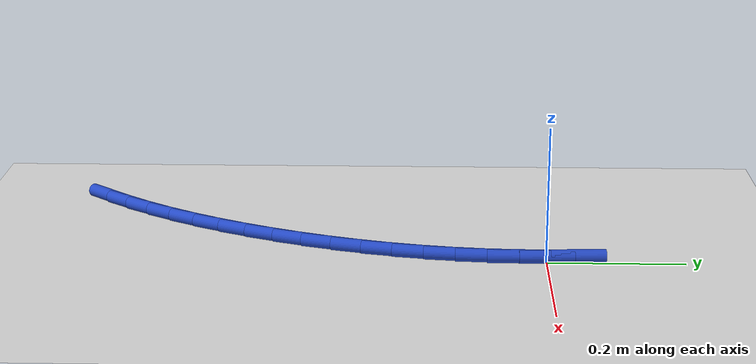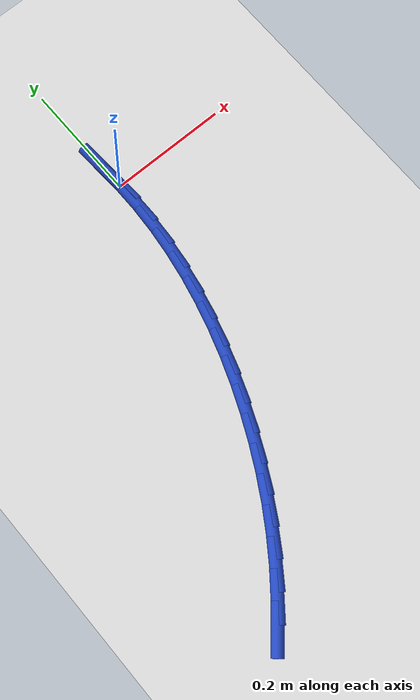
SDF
<sdf version="1.6">
 <world name="default">
  <model name="ground_plane">
   <static>1</static>
   <link name="link">
    <collision name="collision">
     <geometry><plane><normal>0 0 1</normal><size>100 100</size></plane></geometry>
     <surface><friction><ode><mu>100</mu><mu2>50</mu2></ode></friction></surface>
    </collision>
    <visual name="visual">
     <cast_shadows>0</cast_shadows>
     <geometry><plane><normal>0 0 1</normal><size>100 100</size></plane></geometry>
     <material>
      <script><uri>file://media/materials/scripts/gazebo.material</uri><name>Gazebo/WhiteGlow</name></script>
     </material>
    </visual>
   </link>
  </model>
  <model name="line">
   <link name="link_0">
    <pose>5.204170427930421e-18 -2.0816681711721685e-16 0.01 0 1.57 -1.5151693214334319</pose>
    <collision name="collision">
     <geometry><cylinder><radius>0.01</radius><length>0.08</length></cylinder></geometry>
    </collision>
    <visual name="visual">
     <material>
      <script><name>Gazebo/Blue</name><uri>file://media/materials/scripts/gazebo.material</uri></script>
     </material>
     <geometry><cylinder><radius>0.01</radius><length>0.08</length></cylinder></geometry>
    </visual>
   </link>
   <link name="link_134">
    <pose>-0.26078361866461086 -0.6764284123614838 0.01 0 1.57 0.8492488840763447</pose>
    <collision name="collision">
     <geometry><cylinder><radius>0.01</radius><length>0.08</length></cylinder></geometry>
    </collision>
    <visual name="visual">
     <material>
      <script><name>Gazebo/Blue</name><uri>file://media/materials/scripts/gazebo.material</uri></script>
     </material>
     <geometry><cylinder><radius>0.01</radius><length>0.08</length></cylinder></geometry>
    </visual>
   </link>
   <link name="link_135">
    <pose>-0.23041486322929042 -0.6419109881371534 0.01 0 1.57 0.902477152697403</pose>
    <collision name="collision">
     <geometry><cylinder><radius>0.01</radius><length>0.08</length></cylinder></geometry>
    </collision>
    <visual name="visual">
     <material>
      <script><name>Gazebo/Blue</name><uri>file://media/materials/scripts/gazebo.material</uri></script>
     </material>
     <geometry><cylinder><radius>0.01</radius><length>0.08</length></cylinder></geometry>
    </visual>
   </link>
   <link name="link_136">
    <pose>-0.20181157444221967 -0.6056823722287292 0.01 0 1.57 0.9532624385485048</pose>
    <collision name="collision">
     <geometry><cylinder><radius>0.01</radius><length>0.08</length></cylinder></geometry>
    </collision>
    <visual name="visual">
     <material>
      <script><name>Gazebo/Blue</name><uri>file://media/materials/scripts/gazebo.material</uri></script>
     </material>
     <geometry><cylinder><radius>0.01</radius><length>0.08</length></cylinder></geometry>
    </visual>
   </link>
   <link name="link_137">
    <pose>-0.17497594595388566 -0.5678959592642908 0.01 0 1.57 1.0017791061800676</pose>
    <collision name="collision">
     <geometry><cylinder><radius>0.01</radius><length>0.08</length></cylinder></geometry>
    </collision>
    <visual name="visual">
     <material>
      <script><name>Gazebo/Blue</name><uri>file://media/materials/scripts/gazebo.material</uri></script>
     </material>
     <geometry><cylinder><radius>0.01</radius><length>0.08</length></cylinder></geometry>
    </visual>
   </link>
   <link name="link_138">
    <pose>-0.14991017141477544 -0.5287051438719174 0.01 0 1.57 1.0482250158885442</pose>
    <collision name="collision">
     <geometry><cylinder><radius>0.01</radius><length>0.08</length></cylinder></geometry>
    </collision>
    <visual name="visual">
     <material>
      <script><name>Gazebo/Blue</name><uri>file://media/materials/scripts/gazebo.material</uri></script>
     </material>
     <geometry><cylinder><radius>0.01</radius><length>0.08</length></cylinder></geometry>
    </visual>
   </link>
   <link name="link_139">
    <pose>-0.12661644447537498 -0.4882633206796871 0.01 0 1.57 1.0928135760252524</pose>
    <collision name="collision">
     <geometry><cylinder><radius>0.01</radius><length>0.08</length></cylinder></geometry>
    </collision>
    <visual name="visual">
     <material>
      <script><name>Gazebo/Blue</name><uri>file://media/materials/scripts/gazebo.material</uri></script>
     </material>
     <geometry><cylinder><radius>0.01</radius><length>0.08</length></cylinder></geometry>
    </visual>
   </link>
   <link name="link_140">
    <pose>-0.10509695878617165 -0.44672388431568 0.01 0 1.57 1.1357680685935179</pose>
    <collision name="collision">
     <geometry><cylinder><radius>0.01</radius><length>0.08</length></cylinder></geometry>
    </collision>
    <visual name="visual">
     <material>
      <script><name>Gazebo/Blue</name><uri>file://media/materials/scripts/gazebo.material</uri></script>
     </material>
     <geometry><cylinder><radius>0.01</radius><length>0.08</length></cylinder></geometry>
    </visual>
   </link>
   <link name="link_141">
    <pose>-0.08535391119175954 -0.4042402281582566 0.01 0 1.57 1.1777569694288381</pose>
    <collision name="collision">
     <geometry><cylinder><radius>0.01</radius><length>0.08</length></cylinder></geometry>
    </collision>
    <visual name="visual">
     <material>
      <script><name>Gazebo/Blue</name><uri>file://media/materials/scripts/gazebo.material</uri></script>
     </material>
     <geometry><cylinder><radius>0.01</radius><length>0.08</length></cylinder></geometry>
    </visual>
   </link>
   <link name="link_142">
    <pose>-0.06740866954536391 -0.36095824479459077 0.01 0 1.57 1.2204929346120954</pose>
    <collision name="collision">
     <geometry><cylinder><radius>0.01</radius><length>0.08</length></cylinder></geometry>
    </collision>
    <visual name="visual">
     <material>
      <script><name>Gazebo/Blue</name><uri>file://media/materials/scripts/gazebo.material</uri></script>
     </material>
     <geometry><cylinder><radius>0.01</radius><length>0.08</length></cylinder></geometry>
    </visual>
   </link>
   <link name="link_143">
    <pose>-0.05134703669290384 -0.3169986161703724 0.01 0 1.57 1.2645262479656003</pose>
    <collision name="collision">
     <geometry><cylinder><radius>0.01</radius><length>0.08</length></cylinder></geometry>
    </collision>
    <visual name="visual">
     <material>
      <script><name>Gazebo/Blue</name><uri>file://media/materials/scripts/gazebo.material</uri></script>
     </material>
     <geometry><cylinder><radius>0.01</radius><length>0.08</length></cylinder></geometry>
    </visual>
   </link>
   <link name="link_144">
    <pose>-0.037268338194428 -0.2724767333748222 0.01 0 1.57 1.3100948435916333</pose>
    <collision name="collision">
     <geometry><cylinder><radius>0.01</radius><length>0.08</length></cylinder></geometry>
    </collision>
    <visual name="visual">
     <material>
      <script><name>Gazebo/Blue</name><uri>file://media/materials/scripts/gazebo.material</uri></script>
     </material>
     <geometry><cylinder><radius>0.01</radius><length>0.08</length></cylinder></geometry>
    </visual>
   </link>
   <link name="link_145">
    <pose>-0.025271899609986 -0.22750798749716356 0.01 0 1.57 1.3574317771614748</pose>
    <collision name="collision">
     <geometry><cylinder><radius>0.01</radius><length>0.08</length></cylinder></geometry>
    </collision>
    <visual name="visual">
     <material>
      <script><name>Gazebo/Blue</name><uri>file://media/materials/scripts/gazebo.material</uri></script>
     </material>
     <geometry><cylinder><radius>0.01</radius><length>0.08</length></cylinder></geometry>
    </visual>
   </link>
   <link name="link_146">
    <pose>-0.015457046499626585 -0.18220776962661697 0.01 0 1.57 1.4067617293249624</pose>
    <collision name="collision">
     <geometry><cylinder><radius>0.01</radius><length>0.08</length></cylinder></geometry>
    </collision>
    <visual name="visual">
     <material>
      <script><name>Gazebo/Blue</name><uri>file://media/materials/scripts/gazebo.material</uri></script>
     </material>
     <geometry><cylinder><radius>0.01</radius><length>0.08</length></cylinder></geometry>
    </visual>
   </link>
   <link name="link_147">
    <pose>-0.007923104423399125 -0.13669147085240516 0.01 0 1.57 1.458295594172134</pose>
    <collision name="collision">
     <geometry><cylinder><radius>0.01</radius><length>0.08</length></cylinder></geometry>
    </collision>
    <visual name="visual">
     <material>
      <script><name>Gazebo/Blue</name><uri>file://media/materials/scripts/gazebo.material</uri></script>
     </material>
     <geometry><cylinder><radius>0.01</radius><length>0.08</length></cylinder></geometry>
    </visual>
   </link>
   <link name="link_148">
    <pose>-0.002769398941352844 -0.09107448226375096 0.01 0 1.57 1.5122228518923426</pose>
    <collision name="collision">
     <geometry><cylinder><radius>0.01</radius><length>0.08</length></cylinder></geometry>
    </collision>
    <visual name="visual">
     <material>
      <script><name>Gazebo/Blue</name><uri>file://media/materials/scripts/gazebo.material</uri></script>
     </material>
     <geometry><cylinder><radius>0.01</radius><length>0.08</length></cylinder></geometry>
    </visual>
   </link>
   <link name="link_149">
    <pose>-9.525561353671864e-05 -0.04547219494987472 0.01 0 1.57 1.5687015197527558</pose>
    <collision name="collision">
     <geometry><cylinder><radius>0.01</radius><length>0.08</length></cylinder></geometry>
    </collision>
    <visual name="visual">
     <material>
      <script><name>Gazebo/Blue</name><uri>file://media/materials/scripts/gazebo.material</uri></script>
     </material>
     <geometry><cylinder><radius>0.01</radius><length>0.08</length></cylinder></geometry>
    </visual>
   </link>
   <link name="link_150">
    <pose>6.938893903907228e-18 -4.163336342344337e-17 0.01 0 1.57 -1.5137469686313616</pose>
    <collision name="collision">
     <geometry><cylinder><radius>0.01</radius><length>0.08</length></cylinder></geometry>
    </collision>
    <visual name="visual">
     <material>
      <script><name>Gazebo/Blue</name><uri>file://media/materials/scripts/gazebo.material</uri></script>
     </material>
     <geometry><cylinder><radius>0.01</radius><length>0.08</length></cylinder></geometry>
    </visual>
   </link>
   <link name="link_151">
    <pose>-0.00258295766079188 0.04522671149665346 0.01 0 1.57 -1.5137469686313618</pose>
    <collision name="collision">
     <geometry><cylinder><radius>0.01</radius><length>0.08</length></cylinder></geometry>
    </collision>
    <visual name="visual">
     <material>
      <script><name>Gazebo/Blue</name><uri>file://media/materials/scripts/gazebo.material</uri></script>
     </material>
     <geometry><cylinder><radius>0.01</radius><length>0.08</length></cylinder></geometry>
    </visual>
   </link>
  </model>
 </world>
</sdf>
